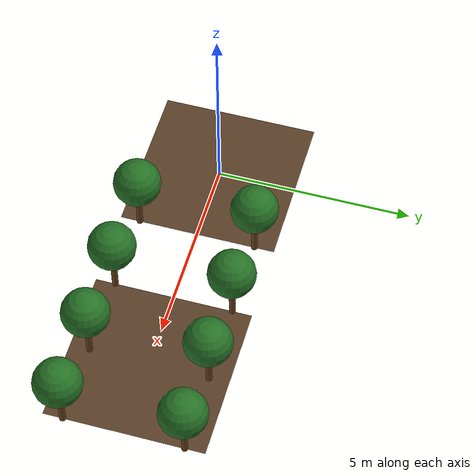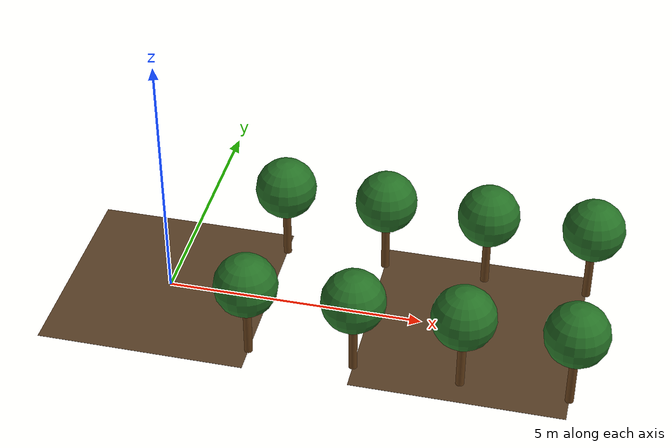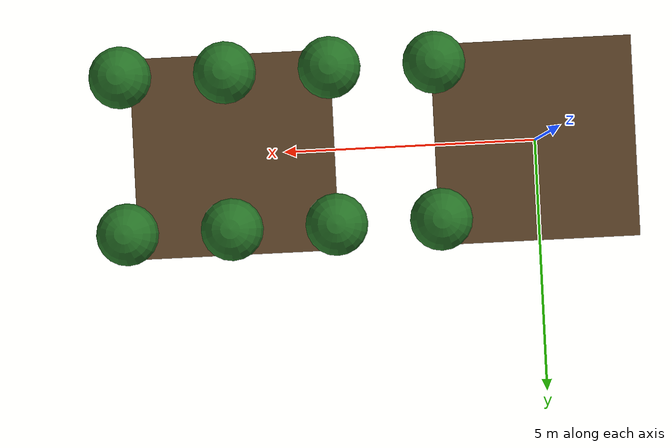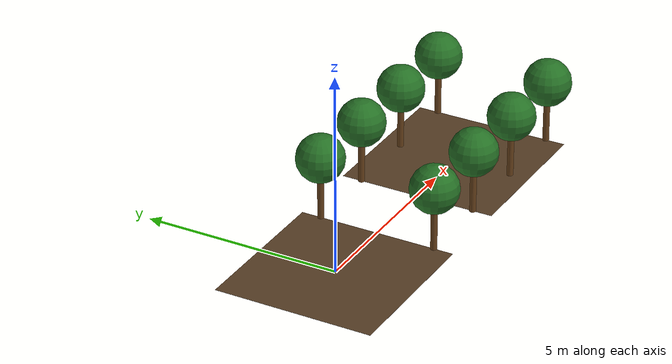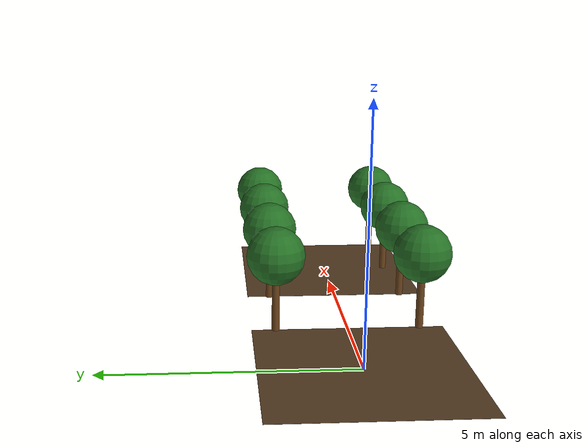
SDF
<sdf version="1.9">
 <world name="orchard_row_world">
  <physics name="default_physics" type="dart">
   <max_step_size>0.001</max_step_size>
   <real_time_factor>1.0</real_time_factor>
  </physics>
  <plugin filename="gz-sim-physics-system" name="gz::sim::systems::Physics"/>
  <plugin filename="gz-sim-sensors-system" name="gz::sim::systems::Sensors">
   <render_engine>ogre2</render_engine>
  </plugin>
  <plugin filename="gz-sim-imu-system" name="gz::sim::systems::Imu"/>
  <plugin filename="gz-sim-navsat-system" name="gz::sim::systems::NavSat"/>
  <plugin filename="gz-sim-user-commands-system" name="gz::sim::systems::UserCommands"/>
  <plugin filename="gz-sim-scene-broadcaster-system" name="gz::sim::systems::SceneBroadcaster"/>
  <plugin filename="gz-sim-detachable-joint-system" name="gz::sim::systems::DetachableJoint"/>
  <light type="directional" name="sun">
   <pose>0 0 10 0 0 0</pose>
   <diffuse>0.9 0.9 0.85 1</diffuse>
   <direction>-0.4 0.2 -0.9</direction>
  </light>
  <include><uri>model://mud_ground_plane</uri><name>ground_dry</name></include>
  <include>
   <uri>model://mud_ground_plane</uri>
   <name>ground_mud_patch_1</name>
   <pose>6 0 0.001 0 0 0</pose>
  </include>
  <include><uri>model://apple_tree</uri><name>tree_row1_0</name><pose>2 1.5 0 0 0 0</pose></include>
  <include><uri>model://apple_tree</uri><name>tree_row1_1</name><pose>4 1.5 0 0 0 0</pose></include>
  <include><uri>model://apple_tree</uri><name>tree_row1_2</name><pose>6 1.5 0 0 0 0</pose></include>
  <include><uri>model://apple_tree</uri><name>tree_row1_3</name><pose>8 1.5 0 0 0 0</pose></include>
  <include><uri>model://apple_tree</uri><name>tree_row2_0</name><pose>2 -1.5 0 0 0 0</pose></include>
  <include><uri>model://apple_tree</uri><name>tree_row2_1</name><pose>4 -1.5 0 0 0 0</pose></include>
  <include><uri>model://apple_tree</uri><name>tree_row2_2</name><pose>6 -1.5 0 0 0 0</pose></include>
  <include><uri>model://apple_tree</uri><name>tree_row2_3</name><pose>8 -1.5 0 0 0 0</pose></include>
 </world>
</sdf>

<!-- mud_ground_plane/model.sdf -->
<sdf version="1.9">
  <model name="mud_ground_plane">
    <static>true</static>
    <link name="patch_link">
      <collision name="collision">
        <geometry>
          <plane><normal>0 0 1</normal><size>4 4</size></plane>
        </geometry>
        <surface>
          <friction>
            <ode>
              <mu1>0.9</mu1>
              <mu2>0.9</mu2>
            </ode>
          </friction>
          <contact>
            <ode><kp>1e6</kp><kd>1.0</kd></ode>
          </contact>
        </surface>
      </collision>
      <visual name="visual">
        <geometry><plane><normal>0 0 1</normal><size>4 4</size></plane></geometry>
        <material>
          <ambient>0.35 0.25 0.15 1</ambient>
          <diffuse>0.35 0.25 0.15 1</diffuse>
        </material>
      </visual>
    </link>
  </model>
</sdf>

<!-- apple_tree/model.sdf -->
<sdf version="1.9">
  <model name="apple_tree">
    <static>true</static>

    <link name="trunk_link">
      <visual name="trunk_visual">
        <geometry><cylinder><radius>0.08</radius><length>1.2</length></cylinder></geometry>
        <material><ambient>0.4 0.25 0.1 1</ambient><diffuse>0.4 0.25 0.1 1</diffuse></material>
      </visual>
      <collision name="trunk_collision">
        <geometry><cylinder><radius>0.08</radius><length>1.2</length></cylinder></geometry>
      </collision>
      <pose>0 0 0.6 0 0 0</pose>
    </link>

    <!-- Meyvelerin baglanacagi referans cerceve; gercek TASARIMDA Blender'daki
         dal geometrisine karsilik gelen birden fazla branch_link olabilir. -->
    <link name="branch_link">
      <visual name="canopy_visual">
        <geometry><sphere><radius>0.6</radius></sphere></geometry>
        <material><ambient>0.15 0.45 0.15 1</ambient><diffuse>0.15 0.45 0.15 1</diffuse></material>
      </visual>
      <collision name="canopy_collision">
        <geometry><sphere><radius>0.6</radius></sphere></geometry>
      </collision>
      <pose>0 0 1.6 0 0 0</pose>
    </link>

    <joint name="trunk_to_branch" type="fixed">
      <parent>trunk_link</parent>
      <child>branch_link</child>
    </joint>
  </model>
</sdf>
